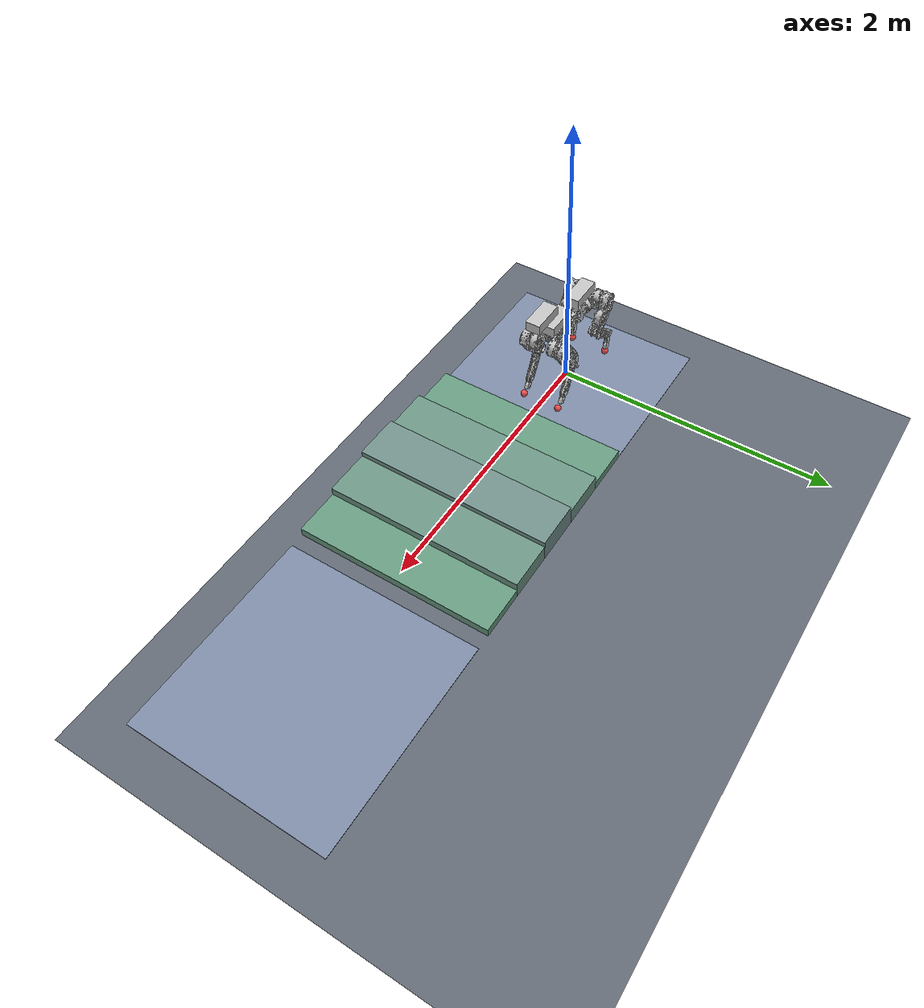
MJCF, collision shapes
<mujoco model="terrain_hsteps">
  <!-- 높이 varying 디딤돌 라인(y=0). base-발판 협조 없으면 못 디딤(A 실패 예상). -->
  <include file="quad_real_17dof_waist_sphere.mjcf"/>
  <worldbody>
    <!-- 시작 발판(로봇 스폰, top z=0) -->
    <geom name="hs_start" type="box" group="2" size="0.55 0.7 0.10" pos="-0.05 0 -0.10" rgba="0.48 0.54 0.64 1"/>
    <!-- 디딤돌: 높이 0.06→0.12→0.16→0.12→0.06 (계단식 언덕, base pitch/z 협조 요구) -->
    <geom name="hs1" type="box" group="2" size="0.16 0.7 0.10" pos="0.66 0 -0.04"  rgba="0.40 0.60 0.50 1"/>
    <geom name="hs2" type="box" group="2" size="0.16 0.7 0.10" pos="0.98 0 0.02"   rgba="0.42 0.58 0.52 1"/>
    <geom name="hs3" type="box" group="2" size="0.16 0.7 0.10" pos="1.30 0 0.06"   rgba="0.44 0.56 0.54 1"/>
    <geom name="hs4" type="box" group="2" size="0.16 0.7 0.10" pos="1.62 0 0.02"   rgba="0.42 0.58 0.52 1"/>
    <geom name="hs5" type="box" group="2" size="0.16 0.7 0.10" pos="1.94 0 -0.04"  rgba="0.40 0.60 0.50 1"/>
    <!-- 끝 발판(top z=0) -->
    <geom name="hs_end" type="box" group="2" size="0.7 0.7 0.10" pos="2.9 0 -0.10" rgba="0.48 0.54 0.64 1"/>
  </worldbody>
</mujoco>

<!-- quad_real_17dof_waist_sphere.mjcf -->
<mujoco model="02_Leg_UFDF_260703_2">
  <!-- meshdir = MJCF 파일 위치 기준 상대경로. 데스크톱/Pi 양쪽에서 동작(quad_go2*.mjcf 와 동일 규약).
       ※절대경로(/home/jsh/…)는 Pi 에서 로드 실패한다 — 실기 브링업에서 발견(2026-08-05). -->
  <compiler angle="radian" meshdir="../meshes_sim_17dof/" />
  <asset>
    <texture name="floor_tex" type="2d" builtin="checker" rgb1="0.33 0.36 0.40" rgb2="0.42 0.45 0.50" width="512" height="512" />
    <material name="floor_mat" texture="floor_tex" texuniform="true" texrepeat="12 12" reflectance="0.12" />
    <mesh name="Base" content_type="model/stl" file="Base.STL" />
    <mesh name="HL_hip_link" content_type="model/stl" file="HL_hip_link.STL" />
    <mesh name="HL_thigh_link" content_type="model/stl" file="HL_thigh_link.STL" />
    <mesh name="HL_calf_link" content_type="model/stl" file="HL_calf_link.STL" />
    <mesh name="HL_foot_link" content_type="model/stl" file="HL_foot_link.STL" />
    <mesh name="HL_foot_contact_link" content_type="model/stl" file="HL_foot_contact_link.STL" />
    <mesh name="HR_hip_link" content_type="model/stl" file="HR_hip_link.STL" />
    <mesh name="HR_thigh_link" content_type="model/stl" file="HR_thigh_link.STL" />
    <mesh name="HR_calf_link" content_type="model/stl" file="HR_calf_link.STL" />
    <mesh name="HR_foot_link" content_type="model/stl" file="HR_foot_link.STL" />
    <mesh name="HR_foot_contact_link" content_type="model/stl" file="HR_foot_contact_link.STL" />
    <mesh name="FB_waist_link" content_type="model/stl" file="FB_waist_link.STL" />
    <mesh name="FL_hip_link" content_type="model/stl" file="FL_hip_link.STL" />
    <mesh name="FL_thigh_link" content_type="model/stl" file="FL_thigh_link.STL" />
    <mesh name="FL_calf_link" content_type="model/stl" file="FL_calf_link.STL" />
    <mesh name="FL_foot_link" content_type="model/stl" file="FL_foot_link.STL" />
    <mesh name="FL_foot_contact_link" content_type="model/stl" file="FL_foot_contact_link.STL" />
    <mesh name="FR_hip_link" content_type="model/stl" file="FR_hip_link.STL" />
    <mesh name="FR_thigh_link" content_type="model/stl" file="FR_thigh_link.STL" />
    <mesh name="FR_calf_link" content_type="model/stl" file="FR_calf_link.STL" />
    <mesh name="FR_foot_link" content_type="model/stl" file="FR_foot_link.STL" />
    <mesh name="FR_foot_contact_link" content_type="model/stl" file="FR_foot_contact_link.STL" />
  </asset>
  <worldbody>
    <body name="Base" pos="0 0 0.5235">
      <freejoint name="root" />
      <inertial pos="-0.12954 -4.9268e-06 0.045617" quat="0.000189274 0.707107 -0.000482779 0.707107" mass="7.4" diaginertia="0.011565 0.010565 0.0059454" />
      <geom type="mesh" contype="0" conaffinity="0" group="1" density="0" rgba="0.75294 0.75294 0.75294 1" mesh="Base" />
      <geom type="mesh" rgba="0.75294 0.75294 0.75294 1" mesh="Base" />
      <body name="HL_hip_link" pos="-0.301 0.0225 0">
        <inertial pos="0.026196 0.039035 -5.8825e-05" quat="0.727698 -1.12194e-05 -8.00771e-06 0.685898" mass="1.3" diaginertia="0.000788485 0.000555085 0.00044966" />
        <joint name="HL_hip_joint" pos="0 0 0" axis="1 0 0" range="-0.349 0.349" actuatorfrcrange="-84 84" />
        <geom type="mesh" contype="0" conaffinity="0" group="1" density="0" rgba="0.75294 0.75294 0.75294 1" mesh="HL_hip_link" />
        <geom type="mesh" rgba="0.75294 0.75294 0.75294 1" mesh="HL_hip_link" />
        <body name="HL_thigh_link" pos="0 0.115 0">
          <inertial pos="0.055149 0.00079282 -0.077079" quat="0.674237 -0.213238 -0.213149 0.674167" mass="3.1" diaginertia="0.005605 0.00436141 0.00134769" />
          <joint name="HL_thigh_joint" pos="0 0 0" axis="0 1 0" range="-2.356 1.134" actuatorfrcrange="-84 84" />
          <geom type="mesh" contype="0" conaffinity="0" group="1" density="0" rgba="0.75294 0.75294 0.75294 1" mesh="HL_thigh_link" />
          <geom type="mesh" rgba="0.75294 0.75294 0.75294 1" mesh="HL_thigh_link" />
          <body name="HL_calf_link" pos="0.13192 0 -0.1884">
            <inertial pos="-0.071593 0.000126754 -0.0633446" quat="0.641055 0.29841 0.29841 0.641055" mass="0.595204" diaginertia="0.00243273 0.00232033 0.000138271" />
            <joint name="HL_calf_joint" pos="0 0 0" axis="0 1 0" range="-0.959 1.134" actuatorfrcrange="-126 126" />
            <geom type="mesh" contype="0" conaffinity="0" group="1" density="0" rgba="0.752941 0.752941 0.752941 1" mesh="HL_calf_link" />
            <geom type="mesh" rgba="0.752941 0.752941 0.752941 1" mesh="HL_calf_link" />
            <body name="HL_foot_link" pos="-0.18768 0 -0.15748">
              <inertial pos="0.0105929 -7.89238e-12 -0.0600756" quat="0.704415 -0.0616285 -0.0616283 0.704417" mass="0.202619" diaginertia="0.000300644 0.000274237 3.03295e-05" />
              <joint name="HL_foot_joint" pos="0 0 0" axis="0 1 0" range="-1.396 0.698" actuatorfrcrange="-100.8 100.8" />
              <geom type="mesh" contype="0" conaffinity="0" group="1" density="0" rgba="0.752941 0.752941 0.752941 1" mesh="HL_foot_link" />
              <geom type="mesh" rgba="0.752941 0.752941 0.752941 1" mesh="HL_foot_link" />
              <body name="HL_foot_contact_link" pos="0.0277837 0 -0.157569">
                <inertial pos="-0.000131235 1.07253e-10 0.000744242" quat="0.541675 0.45452 0.45452 0.541675" mass="0.0375462" diaginertia="1.07022e-05 8.08626e-06 7.24966e-06" />
                <geom type="mesh" contype="0" conaffinity="0" group="1" density="0" rgba="1 1 1 1" mesh="HL_foot_contact_link" />
                <geom type="mesh" rgba="1 1 1 1" mesh="HL_foot_contact_link" contype="0" conaffinity="0" />
                <geom name="HL_sphere" type="sphere" size="0.025" pos="0 0 0" rgba="0.9 0.3 0.3 1" friction="1.3 0.02 0.001" condim="3" />
              </body>
            </body>
          </body>
        </body>
      </body>
      <body name="HR_hip_link" pos="-0.301 -0.0225 0">
        <inertial pos="0.044964 -0.03664 4.8852e-05" quat="0.704132 9.93157e-06 1.28479e-05 0.710069" mass="1.4" diaginertia="0.000818289 0.000551961 0.00046473" />
        <joint name="HR_hip_joint" pos="0 0 0" axis="1 0 0" range="-0.349 0.349" actuatorfrcrange="-84 84" />
        <geom type="mesh" contype="0" conaffinity="0" group="1" density="0" rgba="0.75294 0.75294 0.75294 1" mesh="HR_hip_link" />
        <geom type="mesh" rgba="0.75294 0.75294 0.75294 1" mesh="HR_hip_link" />
        <body name="HR_thigh_link" pos="0 -0.115 0">
          <inertial pos="0.053568 -0.00079281 -0.078186" quat="0.674558 -0.212019 -0.212132 0.674552" mass="3.1" diaginertia="0.005605 0.00436143 0.00134767" />
          <joint name="HR_thigh_joint" pos="0 0 0" axis="0 1 0" range="-2.356 1.134" actuatorfrcrange="-84 84" />
          <geom type="mesh" contype="0" conaffinity="0" group="1" density="0" rgba="0.75294 0.75294 0.75294 1" mesh="HR_thigh_link" />
          <geom type="mesh" rgba="0.75294 0.75294 0.75294 1" mesh="HR_thigh_link" />
          <body name="HR_calf_link" pos="0.13192 0 -0.1884">
            <inertial pos="-0.071593 -0.000124046 -0.0633446" quat="0.641055 0.29841 0.29841 0.641055" mass="0.595204" diaginertia="0.00243273 0.00232033 0.000138271" />
            <joint name="HR_calf_joint" pos="0 0 0" axis="0 1 0" range="-0.959 1.134" actuatorfrcrange="-126 126" />
            <geom type="mesh" contype="0" conaffinity="0" group="1" density="0" rgba="0.752941 0.752941 0.752941 1" mesh="HR_calf_link" />
            <geom type="mesh" rgba="0.752941 0.752941 0.752941 1" mesh="HR_calf_link" />
            <body name="HR_foot_link" pos="-0.187681 0 -0.157483">
              <inertial pos="0.0105929 -7.89188e-12 -0.0600756" quat="0.704415 -0.0616285 -0.0616283 0.704417" mass="0.202619" diaginertia="0.000300644 0.000274237 3.03295e-05" />
              <joint name="HR_foot_joint" pos="0 0 0" axis="0 1 0" range="-1.396 0.698" actuatorfrcrange="-100.8 100.8" />
              <geom type="mesh" contype="0" conaffinity="0" group="1" density="0" rgba="0.752941 0.752941 0.752941 1" mesh="HR_foot_link" />
              <geom type="mesh" rgba="0.752941 0.752941 0.752941 1" mesh="HR_foot_link" />
              <body name="HR_foot_contact_link" pos="0.0277837 0 -0.157569">
                <inertial pos="-0.000131235 1.07254e-10 0.000744242" quat="0.541675 0.45452 0.45452 0.541675" mass="0.0375462" diaginertia="1.07022e-05 8.08626e-06 7.24966e-06" />
                <geom type="mesh" contype="0" conaffinity="0" group="1" density="0" rgba="1 1 1 1" mesh="HR_foot_contact_link" />
                <geom type="mesh" rgba="1 1 1 1" mesh="HR_foot_contact_link" contype="0" conaffinity="0" />
                <geom name="HR_sphere" type="sphere" size="0.025" pos="0 0 0" rgba="0.9 0.3 0.3 1" friction="1.3 0.02 0.001" condim="3" />
              </body>
            </body>
          </body>
        </body>
      </body>
      <body name="FB_waist_link">
        <inertial pos="0.21128 1.2507e-05 0.12655" quat="0.00014397 0.706912 -0.000145167 0.707302" mass="9.5" diaginertia="0.019743 0.018424 0.00768869" />
        <joint name="FB_waist_joint" pos="0 0 0" axis="0 0 1" range="-0.7854 0.7854" actuatorfrcrange="-84 84" />
        <geom type="mesh" contype="0" conaffinity="0" group="1" density="0" rgba="0.75294 0.75294 0.75294 1" mesh="FB_waist_link" />
        <geom type="mesh" rgba="0.75294 0.75294 0.75294 1" mesh="FB_waist_link" />
        <body name="FL_hip_link" pos="0.299 0.0225 0">
          <inertial pos="-0.044964 0.03664 4.8852e-05" quat="0.704132 -9.93157e-06 -1.28479e-05 0.710069" mass="1.3" diaginertia="0.000818289 0.000551961 0.00046473" />
          <joint name="FL_hip_joint" pos="0 0 0" axis="1 0 0" range="-0.349 0.349" actuatorfrcrange="-84 84" />
          <geom type="mesh" contype="0" conaffinity="0" group="1" density="0" rgba="0.75294 0.75294 0.75294 1" mesh="FL_hip_link" />
          <geom type="mesh" rgba="0.75294 0.75294 0.75294 1" mesh="FL_hip_link" />
          <body name="FL_thigh_link" pos="0 0.115 0">
            <inertial pos="-0.053568 0.00079281 -0.078186" quat="0.674558 0.212019 0.212132 0.674552" mass="3.1" diaginertia="0.005605 0.00436143 0.00134767" />
            <joint name="FL_thigh_joint" pos="0 0 0" axis="0 1 0" range="-2.705 1.309" actuatorfrcrange="-84 84" />   <!-- ★앞 thigh limit 양방향 +15°(0.262rad) 확장(원본 -2.443~1.047): 눕기 저자세서 앞다리 세움 여유. 실기 스펙 여유 확인 필요 -->
            <geom type="mesh" contype="0" conaffinity="0" group="1" density="0" rgba="0.75294 0.75294 0.75294 1" mesh="FL_thigh_link" />
            <geom type="mesh" rgba="0.75294 0.75294 0.75294 1" mesh="FL_thigh_link" />
            <body name="FL_calf_link" pos="-0.13192 -0.275 -0.1884">
              <inertial pos="0.0381147 0.275124 -0.0876662" quat="0.690447 -0.152587 -0.152587 0.690447" mass="0.595204" diaginertia="0.00243273 0.00232033 0.000138271" />
              <joint name="FL_calf_joint" pos="0 0 0" axis="0 1 0" range="-1.221 0.785" actuatorfrcrange="-126 126" />
              <geom type="mesh" contype="0" conaffinity="0" group="1" density="0" rgba="0.752941 0.752941 0.752941 1" mesh="FL_calf_link" />
              <geom type="mesh" rgba="0.752941 0.752941 0.752941 1" mesh="FL_calf_link" />
              <body name="FL_foot_link" pos="0.10354 0.275 -0.22205">
                <inertial pos="0.0165092 -1.18803e-11 -0.0285948" quat="0.683002 -0.183015 -0.18301 0.683023" mass="0.135769" diaginertia="8.92406e-05 7.12696e-05 2.11402e-05" />
                <joint name="FL_foot_joint" pos="0 0 0" axis="0 1 0" range="-0.785 1.571" actuatorfrcrange="-100.8 100.8" />
                <geom type="mesh" contype="0" conaffinity="0" group="1" density="0" rgba="0.752941 0.752941 0.752941 1" mesh="FL_foot_link" />
                <geom type="mesh" rgba="0.752941 0.752941 0.752941 1" mesh="FL_foot_link" />
                <body name="FL_foot_contact_link" pos="0.079064 0 -0.0871429">
                  <inertial pos="-0.00627719 -9.99837e-05 0.00215514" quat="0.531362 0.466535 0.466508 0.531385" mass="0.0917377" diaginertia="4.39469e-05 4.3319e-05 2.23667e-05" />
                  <geom type="mesh" contype="0" conaffinity="0" group="1" density="0" rgba="1 1 1 1" mesh="FL_foot_contact_link" />
                  <geom type="mesh" rgba="1 1 1 1" mesh="FL_foot_contact_link" contype="0" conaffinity="0" />
                  <geom name="FL_sphere" type="sphere" size="0.025" pos="0 0 0" rgba="0.9 0.3 0.3 1" friction="1.3 0.02 0.001" condim="3" />
                </body>
              </body>
            </body>
          </body>
        </body>
        <body name="FR_hip_link" pos="0.299 -0.0225 0">
          <inertial pos="-0.026196 -0.039035 -5.8825e-05" quat="0.727698 1.12194e-05 8.00771e-06 0.685898" mass="1.4" diaginertia="0.000788485 0.000555085 0.00044966" />
          <joint name="FR_hip_joint" pos="0 0 0" axis="1 0 0" range="-0.349 0.349" actuatorfrcrange="-84 84" />
          <geom type="mesh" contype="0" conaffinity="0" group="1" density="0" rgba="0.75294 0.75294 0.75294 1" mesh="FR_hip_link" />
          <geom type="mesh" rgba="0.75294 0.75294 0.75294 1" mesh="FR_hip_link" />
          <body name="FR_thigh_link" pos="0 -0.115 0">
            <inertial pos="-0.055149 -0.00079282 -0.077079" quat="0.674237 0.213238 0.213149 0.674167" mass="3.1" diaginertia="0.005605 0.00436141 0.00134769" />
            <joint name="FR_thigh_joint" pos="0 0 0" axis="0 1 0" range="-2.705 1.309" actuatorfrcrange="-84 84" />   <!-- ★앞 thigh limit 양방향 +15°(0.262rad) 확장(원본 -2.443~1.047): 눕기 저자세서 앞다리 세움 여유. 실기 스펙 여유 확인 필요 -->
            <geom type="mesh" contype="0" conaffinity="0" group="1" density="0" rgba="0.75294 0.75294 0.75294 1" mesh="FR_thigh_link" />
            <geom type="mesh" rgba="0.75294 0.75294 0.75294 1" mesh="FR_thigh_link" />
            <body name="FR_calf_link" pos="-0.13192 0 -0.1884">
              <inertial pos="0.0381147 -0.000126754 -0.0876662" quat="0.690447 -0.152587 -0.152587 0.690447" mass="0.595204" diaginertia="0.00243273 0.00232033 0.000138271" />
              <joint name="FR_calf_joint" pos="0 0 0" axis="0 1 0" range="-1.221 0.785" actuatorfrcrange="-126 126" />
              <geom type="mesh" contype="0" conaffinity="0" group="1" density="0" rgba="0.752941 0.752941 0.752941 1" mesh="FR_calf_link" />
              <geom type="mesh" rgba="0.752941 0.752941 0.752941 1" mesh="FR_calf_link" />
              <body name="FR_foot_link" pos="0.10354 0 -0.22205">
                <inertial pos="0.0165092 -1.18804e-11 -0.0285948" quat="0.683002 -0.183015 -0.18301 0.683023" mass="0.135769" diaginertia="8.92406e-05 7.12696e-05 2.11402e-05" />
                <joint name="FR_foot_joint" pos="0 0 0" axis="0 1 0" range="-0.785 1.571" actuatorfrcrange="-100.8 100.8" />
                <geom type="mesh" contype="0" conaffinity="0" group="1" density="0" rgba="0.752941 0.752941 0.752941 1" mesh="FR_foot_link" />
                <geom type="mesh" rgba="0.752941 0.752941 0.752941 1" mesh="FR_foot_link" />
                <body name="FR_foot_contact_link" pos="0.079064 0 -0.0871429">
                  <inertial pos="-0.00627719 -9.99837e-05 0.00215514" quat="0.531362 0.466535 0.466508 0.531385" mass="0.0917377" diaginertia="4.39469e-05 4.3319e-05 2.23667e-05" />
                  <geom type="mesh" contype="0" conaffinity="0" group="1" density="0" rgba="1 1 1 1" mesh="FR_foot_contact_link" />
                  <geom type="mesh" rgba="1 1 1 1" mesh="FR_foot_contact_link" contype="0" conaffinity="0" />
                  <geom name="FR_sphere" type="sphere" size="0.025" pos="0 0 0" rgba="0.9 0.3 0.3 1" friction="1.3 0.02 0.001" condim="3" />
                </body>
              </body>
            </body>
          </body>
        </body>
      </body>
    </body>
    <geom name="floor" type="plane" size="0 0 0.1" material="floor_mat" />   <!-- ★size 0 0 = 무한 평면(체커 무한 타일). texuniform=true라 world 단위로 타일 -->

    <light pos="0 0 3" dir="0 0 -1" />
  </worldbody>
  <option timestep="0.002" gravity="0 0 -9.81" />
  <default>
    <geom friction="1.3 0.02 0.001" condim="3" solref="0.03 1" solimp="0.9 0.95 0.001" />   <!-- ★소프트 접촉(compliant 바닥, solref 0.02→0.03=발 착지 완충). 배포 회귀 확인 -->
    <motor ctrllimited="true" ctrlrange="-200 200" />
  </default>
  <actuator>
    <motor joint="HL_hip_joint" name="HL_hip" />
    <motor joint="HL_thigh_joint" name="HL_thigh" />
    <motor joint="HL_calf_joint" name="HL_calf" />
    <motor joint="HL_foot_joint" name="HL_foot" />
    <motor joint="HR_hip_joint" name="HR_hip" />
    <motor joint="HR_thigh_joint" name="HR_thigh" />
    <motor joint="HR_calf_joint" name="HR_calf" />
    <motor joint="HR_foot_joint" name="HR_foot" />
    <motor joint="FB_waist_joint" name="FB_waist" />
    <motor joint="FL_hip_joint" name="FL_hip" />
    <motor joint="FL_thigh_joint" name="FL_thigh" />
    <motor joint="FL_calf_joint" name="FL_calf" />
    <motor joint="FL_foot_joint" name="FL_foot" />
    <motor joint="FR_hip_joint" name="FR_hip" />
    <motor joint="FR_thigh_joint" name="FR_thigh" />
    <motor joint="FR_calf_joint" name="FR_calf" />
    <motor joint="FR_foot_joint" name="FR_foot" />
  </actuator>
</mujoco>
